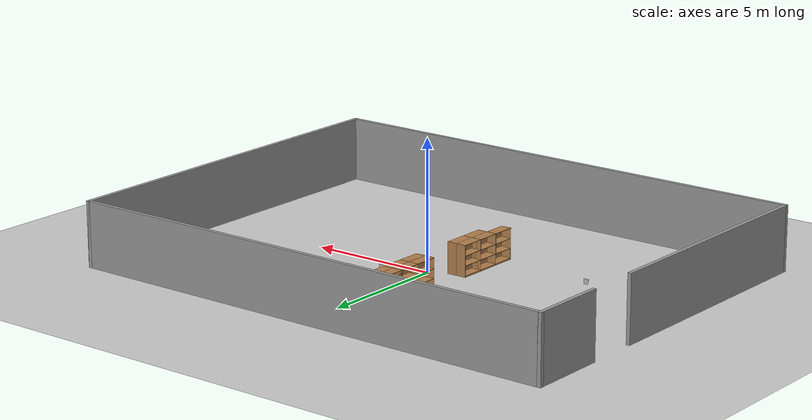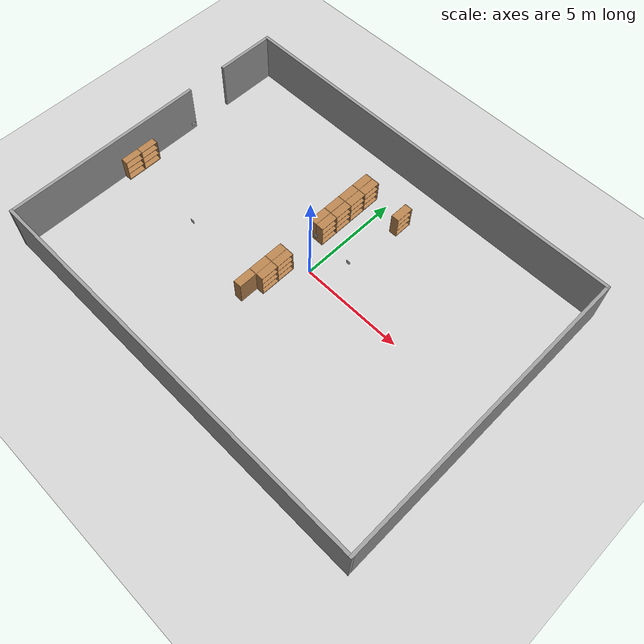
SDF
<sdf version="1.7">
 <world name="default">
  <model name="ground_plane">
   <static>1</static>
   <link name="link">
    <collision name="collision">
     <geometry><plane><normal>0 0 1</normal><size>100 100</size></plane></geometry>
     <surface><friction><ode><mu>100</mu><mu2>50</mu2></ode></friction></surface>
    </collision>
    <visual name="visual">
     <cast_shadows>0</cast_shadows>
     <geometry><plane><normal>0 0 1</normal><size>100 100</size></plane></geometry>
     <material>
      <script><uri>file://media/materials/scripts/gazebo.material</uri><name>Gazebo/Grey</name></script>
     </material>
    </visual>
   </link>
  </model>
  <model name="itu_walls">
   <pose>-0.001584 -0.50836 0 0 -0 0</pose>
   <link name="Wall_2">
    <collision name="Wall_2_Collision">
     <geometry><box><size>20 0.15 2.5</size></box></geometry>
     <pose>0 0 1.25 0 -0 0</pose>
    </collision>
    <visual name="Wall_2_Visual">
     <pose>0 0 1.25 0 -0 0</pose>
     <geometry><box><size>20 0.15 2.5</size></box></geometry>
     <material>
      <script><uri>file://media/materials/scripts/gazebo.material</uri><name>Gazebo/Grey</name></script>
      <ambient>1 1 1 1</ambient>
     </material>
     <meta><layer>0</layer></meta>
    </visual>
    <pose>0 7.425 0 0 -0 0</pose>
   </link>
   <link name="Wall_3">
    <collision name="Wall_3_Collision">
     <geometry><box><size>15 0.15 2.5</size></box></geometry>
     <pose>0 0 1.25 0 -0 0</pose>
    </collision>
    <visual name="Wall_3_Visual">
     <pose>0 0 1.25 0 -0 0</pose>
     <geometry><box><size>15 0.15 2.5</size></box></geometry>
     <material>
      <script><uri>file://media/materials/scripts/gazebo.material</uri><name>Gazebo/Grey</name></script>
      <ambient>1 1 1 1</ambient>
     </material>
     <meta><layer>0</layer></meta>
    </visual>
    <pose>9.925 0 0 0 -0 -1.5708</pose>
   </link>
   <link name="Wall_4">
    <collision name="Wall_4_Collision">
     <geometry><box><size>20 0.15 2.5</size></box></geometry>
     <pose>0 0 1.25 0 -0 0</pose>
    </collision>
    <visual name="Wall_4_Visual">
     <pose>0 0 1.25 0 -0 0</pose>
     <geometry><box><size>20 0.15 2.5</size></box></geometry>
     <material>
      <script><uri>file://media/materials/scripts/gazebo.material</uri><name>Gazebo/Grey</name></script>
      <ambient>1 1 1 1</ambient>
     </material>
     <meta><layer>0</layer></meta>
    </visual>
    <pose>0 -7.425 0 0 -0 3.14159</pose>
   </link>
   <link name="Wall_5">
    <collision name="Wall_5_Collision">
     <geometry><box><size>10 0.15 2.5</size></box></geometry>
     <pose>0 0 1.25 0 -0 0</pose>
    </collision>
    <visual name="Wall_5_Visual">
     <pose>0 0 1.25 0 -0 0</pose>
     <geometry><box><size>10 0.15 2.5</size></box></geometry>
     <material>
      <script><uri>file://media/materials/scripts/gazebo.material</uri><name>Gazebo/Grey</name></script>
      <ambient>1 1 1 1</ambient>
     </material>
     <meta><layer>0</layer></meta>
    </visual>
    <pose>-9.925 -2.5 0 0 -0 1.5708</pose>
   </link>
   <link name="Wall_7">
    <collision name="Wall_7_Collision">
     <geometry><box><size>3 0.15 2.5</size></box></geometry>
     <pose>0 0 1.25 0 -0 0</pose>
    </collision>
    <visual name="Wall_7_Visual">
     <pose>0 0 1.25 0 -0 0</pose>
     <geometry><box><size>3 0.15 2.5</size></box></geometry>
     <material>
      <script><uri>file://media/materials/scripts/gazebo.material</uri><name>Gazebo/Grey</name></script>
      <ambient>1 1 1 1</ambient>
     </material>
     <meta><layer>0</layer></meta>
    </visual>
    <pose>-9.925 6 0 0 -0 -1.5708</pose>
   </link>
   <static>1</static>
  </model>
  <model name="sec1_A_0">
   <static>1</static>
   <link name="link">
    <inertial><mass>1</mass></inertial>
    <visual name="visual1">
     <pose>0 0.005 0.6 0 -0 0</pose>
     <geometry><box><size>0.9 0.01 1.2</size></box></geometry>
     <material>
      <script><uri>file://media/materials/scripts/gazebo.material</uri><name>Gazebo/Wood</name></script>
     </material>
    </visual>
    <visual name="visual2">
     <pose>0.45 -0.195 0.6 0 -0 0</pose>
     <geometry><box><size>0.02 0.4 1.2</size></box></geometry>
     <material>
      <script><uri>file://media/materials/scripts/gazebo.material</uri><name>Gazebo/Wood</name></script>
     </material>
    </visual>
    <visual name="visual3">
     <pose>-0.45 -0.195 0.6 0 -0 0</pose>
     <geometry><box><size>0.02 0.4 1.2</size></box></geometry>
     <material>
      <script><uri>file://media/materials/scripts/gazebo.material</uri><name>Gazebo/Wood</name></script>
     </material>
    </visual>
    <visual name="visual4">
     <pose>0 -0.195 0.03 0 -0 0</pose>
     <geometry><box><size>0.88 0.4 0.06</size></box></geometry>
     <material>
      <script><uri>file://media/materials/scripts/gazebo.material</uri><name>Gazebo/Wood</name></script>
     </material>
    </visual>
    <visual name="visual5">
     <pose>0 -0.195 1.19 0 -0 0</pose>
     <geometry><box><size>0.88 0.4 0.02</size></box></geometry>
     <material>
      <script><uri>file://media/materials/scripts/gazebo.material</uri><name>Gazebo/Wood</name></script>
     </material>
    </visual>
    <visual name="visual6">
     <pose>0 -0.195 0.43 0 -0 0</pose>
     <geometry><box><size>0.88 0.4 0.02</size></box></geometry>
     <material>
      <script><uri>file://media/materials/scripts/gazebo.material</uri><name>Gazebo/Wood</name></script>
     </material>
    </visual>
    <visual name="visual7">
     <pose>0 -0.195 0.8 0 -0 0</pose>
     <geometry><box><size>0.88 0.4 0.02</size></box></geometry>
     <material>
      <script><uri>file://media/materials/scripts/gazebo.material</uri><name>Gazebo/Wood</name></script>
     </material>
    </visual>
    <collision name="unified_hitbox">
     <pose>0 -0.1925 0.6 0 -0 0</pose>
     <geometry><box><size>0.92 0.405 1.2</size></box></geometry>
    </collision>
   </link>
   <pose>1 4.55 0 0 -0 1.57</pose>
  </model>
  <model name="secNeg1_A_0">
   <static>1</static>
   <link name="link">
    <inertial><mass>1</mass></inertial>
    <visual name="visual1">
     <pose>0 0.005 0.6 0 -0 0</pose>
     <geometry><box><size>0.9 0.01 1.2</size></box></geometry>
     <material>
      <script><uri>file://media/materials/scripts/gazebo.material</uri><name>Gazebo/Wood</name></script>
     </material>
    </visual>
    <visual name="visual2">
     <pose>0.45 -0.195 0.6 0 -0 0</pose>
     <geometry><box><size>0.02 0.4 1.2</size></box></geometry>
     <material>
      <script><uri>file://media/materials/scripts/gazebo.material</uri><name>Gazebo/Wood</name></script>
     </material>
    </visual>
    <visual name="visual3">
     <pose>-0.45 -0.195 0.6 0 -0 0</pose>
     <geometry><box><size>0.02 0.4 1.2</size></box></geometry>
     <material>
      <script><uri>file://media/materials/scripts/gazebo.material</uri><name>Gazebo/Wood</name></script>
     </material>
    </visual>
    <visual name="visual4">
     <pose>0 -0.195 0.03 0 -0 0</pose>
     <geometry><box><size>0.88 0.4 0.06</size></box></geometry>
     <material>
      <script><uri>file://media/materials/scripts/gazebo.material</uri><name>Gazebo/Wood</name></script>
     </material>
    </visual>
    <visual name="visual5">
     <pose>0 -0.195 1.19 0 -0 0</pose>
     <geometry><box><size>0.88 0.4 0.02</size></box></geometry>
     <material>
      <script><uri>file://media/materials/scripts/gazebo.material</uri><name>Gazebo/Wood</name></script>
     </material>
    </visual>
    <visual name="visual6">
     <pose>0 -0.195 0.43 0 -0 0</pose>
     <geometry><box><size>0.88 0.4 0.02</size></box></geometry>
     <material>
      <script><uri>file://media/materials/scripts/gazebo.material</uri><name>Gazebo/Wood</name></script>
     </material>
    </visual>
    <visual name="visual7">
     <pose>0 -0.195 0.8 0 -0 0</pose>
     <geometry><box><size>0.88 0.4 0.02</size></box></geometry>
     <material>
      <script><uri>file://media/materials/scripts/gazebo.material</uri><name>Gazebo/Wood</name></script>
     </material>
    </visual>
    <collision name="unified_hitbox">
     <pose>0 -0.1925 0.6 0 -0 0</pose>
     <geometry><box><size>0.92 0.405 1.2</size></box></geometry>
    </collision>
   </link>
   <pose>-1 4.55 0 0 -0 1.57</pose>
  </model>
  <model name="secNeg1_A_1">
   <static>1</static>
   <link name="link">
    <inertial><mass>1</mass></inertial>
    <visual name="visual1">
     <pose>0 0.005 0.6 0 -0 0</pose>
     <geometry><box><size>0.9 0.01 1.2</size></box></geometry>
     <material>
      <script><uri>file://media/materials/scripts/gazebo.material</uri><name>Gazebo/Wood</name></script>
     </material>
    </visual>
    <visual name="visual2">
     <pose>0.45 -0.195 0.6 0 -0 0</pose>
     <geometry><box><size>0.02 0.4 1.2</size></box></geometry>
     <material>
      <script><uri>file://media/materials/scripts/gazebo.material</uri><name>Gazebo/Wood</name></script>
     </material>
    </visual>
    <visual name="visual3">
     <pose>-0.45 -0.195 0.6 0 -0 0</pose>
     <geometry><box><size>0.02 0.4 1.2</size></box></geometry>
     <material>
      <script><uri>file://media/materials/scripts/gazebo.material</uri><name>Gazebo/Wood</name></script>
     </material>
    </visual>
    <visual name="visual4">
     <pose>0 -0.195 0.03 0 -0 0</pose>
     <geometry><box><size>0.88 0.4 0.06</size></box></geometry>
     <material>
      <script><uri>file://media/materials/scripts/gazebo.material</uri><name>Gazebo/Wood</name></script>
     </material>
    </visual>
    <visual name="visual5">
     <pose>0 -0.195 1.19 0 -0 0</pose>
     <geometry><box><size>0.88 0.4 0.02</size></box></geometry>
     <material>
      <script><uri>file://media/materials/scripts/gazebo.material</uri><name>Gazebo/Wood</name></script>
     </material>
    </visual>
    <visual name="visual6">
     <pose>0 -0.195 0.43 0 -0 0</pose>
     <geometry><box><size>0.88 0.4 0.02</size></box></geometry>
     <material>
      <script><uri>file://media/materials/scripts/gazebo.material</uri><name>Gazebo/Wood</name></script>
     </material>
    </visual>
    <visual name="visual7">
     <pose>0 -0.195 0.8 0 -0 0</pose>
     <geometry><box><size>0.88 0.4 0.02</size></box></geometry>
     <material>
      <script><uri>file://media/materials/scripts/gazebo.material</uri><name>Gazebo/Wood</name></script>
     </material>
    </visual>
    <collision name="unified_hitbox">
     <pose>0 -0.1925 0.6 0 -0 0</pose>
     <geometry><box><size>0.92 0.405 1.2</size></box></geometry>
    </collision>
   </link>
   <pose>-1 3.65 0 0 -0 1.57</pose>
  </model>
  <model name="secNeg1_A_2">
   <static>1</static>
   <link name="link">
    <inertial><mass>1</mass></inertial>
    <visual name="visual1">
     <pose>0 0.005 0.6 0 -0 0</pose>
     <geometry><box><size>0.9 0.01 1.2</size></box></geometry>
     <material>
      <script><uri>file://media/materials/scripts/gazebo.material</uri><name>Gazebo/Wood</name></script>
     </material>
    </visual>
    <visual name="visual2">
     <pose>0.45 -0.195 0.6 0 -0 0</pose>
     <geometry><box><size>0.02 0.4 1.2</size></box></geometry>
     <material>
      <script><uri>file://media/materials/scripts/gazebo.material</uri><name>Gazebo/Wood</name></script>
     </material>
    </visual>
    <visual name="visual3">
     <pose>-0.45 -0.195 0.6 0 -0 0</pose>
     <geometry><box><size>0.02 0.4 1.2</size></box></geometry>
     <material>
      <script><uri>file://media/materials/scripts/gazebo.material</uri><name>Gazebo/Wood</name></script>
     </material>
    </visual>
    <visual name="visual4">
     <pose>0 -0.195 0.03 0 -0 0</pose>
     <geometry><box><size>0.88 0.4 0.06</size></box></geometry>
     <material>
      <script><uri>file://media/materials/scripts/gazebo.material</uri><name>Gazebo/Wood</name></script>
     </material>
    </visual>
    <visual name="visual5">
     <pose>0 -0.195 1.19 0 -0 0</pose>
     <geometry><box><size>0.88 0.4 0.02</size></box></geometry>
     <material>
      <script><uri>file://media/materials/scripts/gazebo.material</uri><name>Gazebo/Wood</name></script>
     </material>
    </visual>
    <visual name="visual6">
     <pose>0 -0.195 0.43 0 -0 0</pose>
     <geometry><box><size>0.88 0.4 0.02</size></box></geometry>
     <material>
      <script><uri>file://media/materials/scripts/gazebo.material</uri><name>Gazebo/Wood</name></script>
     </material>
    </visual>
    <visual name="visual7">
     <pose>0 -0.195 0.8 0 -0 0</pose>
     <geometry><box><size>0.88 0.4 0.02</size></box></geometry>
     <material>
      <script><uri>file://media/materials/scripts/gazebo.material</uri><name>Gazebo/Wood</name></script>
     </material>
    </visual>
    <collision name="unified_hitbox">
     <pose>0 -0.1925 0.6 0 -0 0</pose>
     <geometry><box><size>0.92 0.405 1.2</size></box></geometry>
    </collision>
   </link>
   <pose>-1 2.75 0 0 -0 1.57</pose>
  </model>
  <model name="secNeg1_B_0">
   <static>1</static>
   <link name="link">
    <inertial><mass>1</mass></inertial>
    <visual name="visual1">
     <pose>0 0.005 0.6 0 -0 0</pose>
     <geometry><box><size>0.9 0.01 1.2</size></box></geometry>
     <material>
      <script><uri>file://media/materials/scripts/gazebo.material</uri><name>Gazebo/Wood</name></script>
     </material>
    </visual>
    <visual name="visual2">
     <pose>0.45 -0.195 0.6 0 -0 0</pose>
     <geometry><box><size>0.02 0.4 1.2</size></box></geometry>
     <material>
      <script><uri>file://media/materials/scripts/gazebo.material</uri><name>Gazebo/Wood</name></script>
     </material>
    </visual>
    <visual name="visual3">
     <pose>-0.45 -0.195 0.6 0 -0 0</pose>
     <geometry><box><size>0.02 0.4 1.2</size></box></geometry>
     <material>
      <script><uri>file://media/materials/scripts/gazebo.material</uri><name>Gazebo/Wood</name></script>
     </material>
    </visual>
    <visual name="visual4">
     <pose>0 -0.195 0.03 0 -0 0</pose>
     <geometry><box><size>0.88 0.4 0.06</size></box></geometry>
     <material>
      <script><uri>file://media/materials/scripts/gazebo.material</uri><name>Gazebo/Wood</name></script>
     </material>
    </visual>
    <visual name="visual5">
     <pose>0 -0.195 1.19 0 -0 0</pose>
     <geometry><box><size>0.88 0.4 0.02</size></box></geometry>
     <material>
      <script><uri>file://media/materials/scripts/gazebo.material</uri><name>Gazebo/Wood</name></script>
     </material>
    </visual>
    <visual name="visual6">
     <pose>0 -0.195 0.43 0 -0 0</pose>
     <geometry><box><size>0.88 0.4 0.02</size></box></geometry>
     <material>
      <script><uri>file://media/materials/scripts/gazebo.material</uri><name>Gazebo/Wood</name></script>
     </material>
    </visual>
    <visual name="visual7">
     <pose>0 -0.195 0.8 0 -0 0</pose>
     <geometry><box><size>0.88 0.4 0.02</size></box></geometry>
     <material>
      <script><uri>file://media/materials/scripts/gazebo.material</uri><name>Gazebo/Wood</name></script>
     </material>
    </visual>
    <collision name="unified_hitbox">
     <pose>0 -0.1925 0.6 0 -0 0</pose>
     <geometry><box><size>0.92 0.405 1.2</size></box></geometry>
    </collision>
   </link>
   <pose>-1 4.55 0 0 0 -1.57</pose>
  </model>
  <model name="secNeg1_B_1">
   <static>1</static>
   <link name="link">
    <inertial><mass>1</mass></inertial>
    <visual name="visual1">
     <pose>0 0.005 0.6 0 -0 0</pose>
     <geometry><box><size>0.9 0.01 1.2</size></box></geometry>
     <material>
      <script><uri>file://media/materials/scripts/gazebo.material</uri><name>Gazebo/Wood</name></script>
     </material>
    </visual>
    <visual name="visual2">
     <pose>0.45 -0.195 0.6 0 -0 0</pose>
     <geometry><box><size>0.02 0.4 1.2</size></box></geometry>
     <material>
      <script><uri>file://media/materials/scripts/gazebo.material</uri><name>Gazebo/Wood</name></script>
     </material>
    </visual>
    <visual name="visual3">
     <pose>-0.45 -0.195 0.6 0 -0 0</pose>
     <geometry><box><size>0.02 0.4 1.2</size></box></geometry>
     <material>
      <script><uri>file://media/materials/scripts/gazebo.material</uri><name>Gazebo/Wood</name></script>
     </material>
    </visual>
    <visual name="visual4">
     <pose>0 -0.195 0.03 0 -0 0</pose>
     <geometry><box><size>0.88 0.4 0.06</size></box></geometry>
     <material>
      <script><uri>file://media/materials/scripts/gazebo.material</uri><name>Gazebo/Wood</name></script>
     </material>
    </visual>
    <visual name="visual5">
     <pose>0 -0.195 1.19 0 -0 0</pose>
     <geometry><box><size>0.88 0.4 0.02</size></box></geometry>
     <material>
      <script><uri>file://media/materials/scripts/gazebo.material</uri><name>Gazebo/Wood</name></script>
     </material>
    </visual>
    <visual name="visual6">
     <pose>0 -0.195 0.43 0 -0 0</pose>
     <geometry><box><size>0.88 0.4 0.02</size></box></geometry>
     <material>
      <script><uri>file://media/materials/scripts/gazebo.material</uri><name>Gazebo/Wood</name></script>
     </material>
    </visual>
    <visual name="visual7">
     <pose>0 -0.195 0.8 0 -0 0</pose>
     <geometry><box><size>0.88 0.4 0.02</size></box></geometry>
     <material>
      <script><uri>file://media/materials/scripts/gazebo.material</uri><name>Gazebo/Wood</name></script>
     </material>
    </visual>
    <collision name="unified_hitbox">
     <pose>0 -0.1925 0.6 0 -0 0</pose>
     <geometry><box><size>0.92 0.405 1.2</size></box></geometry>
    </collision>
   </link>
   <pose>-1 3.65 0 0 0 -1.57</pose>
  </model>
  <model name="secNeg1_B_2">
   <static>1</static>
   <link name="link">
    <inertial><mass>1</mass></inertial>
    <visual name="visual1">
     <pose>0 0.005 0.6 0 -0 0</pose>
     <geometry><box><size>0.9 0.01 1.2</size></box></geometry>
     <material>
      <script><uri>file://media/materials/scripts/gazebo.material</uri><name>Gazebo/Wood</name></script>
     </material>
    </visual>
    <visual name="visual2">
     <pose>0.45 -0.195 0.6 0 -0 0</pose>
     <geometry><box><size>0.02 0.4 1.2</size></box></geometry>
     <material>
      <script><uri>file://media/materials/scripts/gazebo.material</uri><name>Gazebo/Wood</name></script>
     </material>
    </visual>
    <visual name="visual3">
     <pose>-0.45 -0.195 0.6 0 -0 0</pose>
     <geometry><box><size>0.02 0.4 1.2</size></box></geometry>
     <material>
      <script><uri>file://media/materials/scripts/gazebo.material</uri><name>Gazebo/Wood</name></script>
     </material>
    </visual>
    <visual name="visual4">
     <pose>0 -0.195 0.03 0 -0 0</pose>
     <geometry><box><size>0.88 0.4 0.06</size></box></geometry>
     <material>
      <script><uri>file://media/materials/scripts/gazebo.material</uri><name>Gazebo/Wood</name></script>
     </material>
    </visual>
    <visual name="visual5">
     <pose>0 -0.195 1.19 0 -0 0</pose>
     <geometry><box><size>0.88 0.4 0.02</size></box></geometry>
     <material>
      <script><uri>file://media/materials/scripts/gazebo.material</uri><name>Gazebo/Wood</name></script>
     </material>
    </visual>
    <visual name="visual6">
     <pose>0 -0.195 0.43 0 -0 0</pose>
     <geometry><box><size>0.88 0.4 0.02</size></box></geometry>
     <material>
      <script><uri>file://media/materials/scripts/gazebo.material</uri><name>Gazebo/Wood</name></script>
     </material>
    </visual>
    <visual name="visual7">
     <pose>0 -0.195 0.8 0 -0 0</pose>
     <geometry><box><size>0.88 0.4 0.02</size></box></geometry>
     <material>
      <script><uri>file://media/materials/scripts/gazebo.material</uri><name>Gazebo/Wood</name></script>
     </material>
    </visual>
    <collision name="unified_hitbox">
     <pose>0 -0.1925 0.6 0 -0 0</pose>
     <geometry><box><size>0.92 0.405 1.2</size></box></geometry>
    </collision>
   </link>
   <pose>-1 2.75 0 0 0 -1.57</pose>
  </model>
  <model name="secNeg1_A_3">
   <static>1</static>
   <link name="link">
    <inertial><mass>1</mass></inertial>
    <visual name="visual1">
     <pose>0 0.005 0.6 0 -0 0</pose>
     <geometry><box><size>0.9 0.01 1.2</size></box></geometry>
     <material>
      <script><uri>file://media/materials/scripts/gazebo.material</uri><name>Gazebo/Wood</name></script>
     </material>
    </visual>
    <visual name="visual2">
     <pose>0.45 -0.195 0.6 0 -0 0</pose>
     <geometry><box><size>0.02 0.4 1.2</size></box></geometry>
     <material>
      <script><uri>file://media/materials/scripts/gazebo.material</uri><name>Gazebo/Wood</name></script>
     </material>
    </visual>
    <visual name="visual3">
     <pose>-0.45 -0.195 0.6 0 -0 0</pose>
     <geometry><box><size>0.02 0.4 1.2</size></box></geometry>
     <material>
      <script><uri>file://media/materials/scripts/gazebo.material</uri><name>Gazebo/Wood</name></script>
     </material>
    </visual>
    <visual name="visual4">
     <pose>0 -0.195 0.03 0 -0 0</pose>
     <geometry><box><size>0.88 0.4 0.06</size></box></geometry>
     <material>
      <script><uri>file://media/materials/scripts/gazebo.material</uri><name>Gazebo/Wood</name></script>
     </material>
    </visual>
    <visual name="visual5">
     <pose>0 -0.195 1.19 0 -0 0</pose>
     <geometry><box><size>0.88 0.4 0.02</size></box></geometry>
     <material>
      <script><uri>file://media/materials/scripts/gazebo.material</uri><name>Gazebo/Wood</name></script>
     </material>
    </visual>
    <visual name="visual6">
     <pose>0 -0.195 0.43 0 -0 0</pose>
     <geometry><box><size>0.88 0.4 0.02</size></box></geometry>
     <material>
      <script><uri>file://media/materials/scripts/gazebo.material</uri><name>Gazebo/Wood</name></script>
     </material>
    </visual>
    <visual name="visual7">
     <pose>0 -0.195 0.8 0 -0 0</pose>
     <geometry><box><size>0.88 0.4 0.02</size></box></geometry>
     <material>
      <script><uri>file://media/materials/scripts/gazebo.material</uri><name>Gazebo/Wood</name></script>
     </material>
    </visual>
    <collision name="unified_hitbox">
     <pose>0 -0.1925 0.6 0 -0 0</pose>
     <geometry><box><size>0.92 0.405 1.2</size></box></geometry>
    </collision>
   </link>
   <pose>-1 1.85 0 0 -0 1.57</pose>
  </model>
  <model name="secNeg1_B_3">
   <static>1</static>
   <link name="link">
    <inertial><mass>1</mass></inertial>
    <visual name="visual1">
     <pose>0 0.005 0.6 0 -0 0</pose>
     <geometry><box><size>0.9 0.01 1.2</size></box></geometry>
     <material>
      <script><uri>file://media/materials/scripts/gazebo.material</uri><name>Gazebo/Wood</name></script>
     </material>
    </visual>
    <visual name="visual2">
     <pose>0.45 -0.195 0.6 0 -0 0</pose>
     <geometry><box><size>0.02 0.4 1.2</size></box></geometry>
     <material>
      <script><uri>file://media/materials/scripts/gazebo.material</uri><name>Gazebo/Wood</name></script>
     </material>
    </visual>
    <visual name="visual3">
     <pose>-0.45 -0.195 0.6 0 -0 0</pose>
     <geometry><box><size>0.02 0.4 1.2</size></box></geometry>
     <material>
      <script><uri>file://media/materials/scripts/gazebo.material</uri><name>Gazebo/Wood</name></script>
     </material>
    </visual>
    <visual name="visual4">
     <pose>0 -0.195 0.03 0 -0 0</pose>
     <geometry><box><size>0.88 0.4 0.06</size></box></geometry>
     <material>
      <script><uri>file://media/materials/scripts/gazebo.material</uri><name>Gazebo/Wood</name></script>
     </material>
    </visual>
    <visual name="visual5">
     <pose>0 -0.195 1.19 0 -0 0</pose>
     <geometry><box><size>0.88 0.4 0.02</size></box></geometry>
     <material>
      <script><uri>file://media/materials/scripts/gazebo.material</uri><name>Gazebo/Wood</name></script>
     </material>
    </visual>
    <visual name="visual6">
     <pose>0 -0.195 0.43 0 -0 0</pose>
     <geometry><box><size>0.88 0.4 0.02</size></box></geometry>
     <material>
      <script><uri>file://media/materials/scripts/gazebo.material</uri><name>Gazebo/Wood</name></script>
     </material>
    </visual>
    <visual name="visual7">
     <pose>0 -0.195 0.8 0 -0 0</pose>
     <geometry><box><size>0.88 0.4 0.02</size></box></geometry>
     <material>
      <script><uri>file://media/materials/scripts/gazebo.material</uri><name>Gazebo/Wood</name></script>
     </material>
    </visual>
    <collision name="unified_hitbox">
     <pose>0 -0.1925 0.6 0 -0 0</pose>
     <geometry><box><size>0.92 0.405 1.2</size></box></geometry>
    </collision>
   </link>
   <pose>-1 1.85 0 0 0 -1.57</pose>
  </model>
  <model name="bot_secNeg1_A_0">
   <static>1</static>
   <link name="link">
    <inertial><mass>1</mass></inertial>
    <visual name="visual1">
     <pose>0 0.005 0.6 0 -0 0</pose>
     <geometry><box><size>0.9 0.01 1.2</size></box></geometry>
     <material>
      <script><uri>file://media/materials/scripts/gazebo.material</uri><name>Gazebo/Wood</name></script>
     </material>
    </visual>
    <visual name="visual2">
     <pose>0.45 -0.195 0.6 0 -0 0</pose>
     <geometry><box><size>0.02 0.4 1.2</size></box></geometry>
     <material>
      <script><uri>file://media/materials/scripts/gazebo.material</uri><name>Gazebo/Wood</name></script>
     </material>
    </visual>
    <visual name="visual3">
     <pose>-0.45 -0.195 0.6 0 -0 0</pose>
     <geometry><box><size>0.02 0.4 1.2</size></box></geometry>
     <material>
      <script><uri>file://media/materials/scripts/gazebo.material</uri><name>Gazebo/Wood</name></script>
     </material>
    </visual>
    <visual name="visual4">
     <pose>0 -0.195 0.03 0 -0 0</pose>
     <geometry><box><size>0.88 0.4 0.06</size></box></geometry>
     <material>
      <script><uri>file://media/materials/scripts/gazebo.material</uri><name>Gazebo/Wood</name></script>
     </material>
    </visual>
    <visual name="visual5">
     <pose>0 -0.195 1.19 0 -0 0</pose>
     <geometry><box><size>0.88 0.4 0.02</size></box></geometry>
     <material>
      <script><uri>file://media/materials/scripts/gazebo.material</uri><name>Gazebo/Wood</name></script>
     </material>
    </visual>
    <visual name="visual6">
     <pose>0 -0.195 0.43 0 -0 0</pose>
     <geometry><box><size>0.88 0.4 0.02</size></box></geometry>
     <material>
      <script><uri>file://media/materials/scripts/gazebo.material</uri><name>Gazebo/Wood</name></script>
     </material>
    </visual>
    <visual name="visual7">
     <pose>0 -0.195 0.8 0 -0 0</pose>
     <geometry><box><size>0.88 0.4 0.02</size></box></geometry>
     <material>
      <script><uri>file://media/materials/scripts/gazebo.material</uri><name>Gazebo/Wood</name></script>
     </material>
    </visual>
    <collision name="unified_hitbox">
     <pose>0 -0.1925 0.6 0 -0 0</pose>
     <geometry><box><size>0.92 0.405 1.2</size></box></geometry>
    </collision>
   </link>
   <pose>-1 -0.85 0 0 -0 1.57</pose>
  </model>
  <model name="bot_secNeg1_B_0">
   <static>1</static>
   <link name="link">
    <inertial><mass>1</mass></inertial>
    <visual name="visual1">
     <pose>0 0.005 0.6 0 -0 0</pose>
     <geometry><box><size>0.9 0.01 1.2</size></box></geometry>
     <material>
      <script><uri>file://media/materials/scripts/gazebo.material</uri><name>Gazebo/Wood</name></script>
     </material>
    </visual>
    <visual name="visual2">
     <pose>0.45 -0.195 0.6 0 -0 0</pose>
     <geometry><box><size>0.02 0.4 1.2</size></box></geometry>
     <material>
      <script><uri>file://media/materials/scripts/gazebo.material</uri><name>Gazebo/Wood</name></script>
     </material>
    </visual>
    <visual name="visual3">
     <pose>-0.45 -0.195 0.6 0 -0 0</pose>
     <geometry><box><size>0.02 0.4 1.2</size></box></geometry>
     <material>
      <script><uri>file://media/materials/scripts/gazebo.material</uri><name>Gazebo/Wood</name></script>
     </material>
    </visual>
    <visual name="visual4">
     <pose>0 -0.195 0.03 0 -0 0</pose>
     <geometry><box><size>0.88 0.4 0.06</size></box></geometry>
     <material>
      <script><uri>file://media/materials/scripts/gazebo.material</uri><name>Gazebo/Wood</name></script>
     </material>
    </visual>
    <visual name="visual5">
     <pose>0 -0.195 1.19 0 -0 0</pose>
     <geometry><box><size>0.88 0.4 0.02</size></box></geometry>
     <material>
      <script><uri>file://media/materials/scripts/gazebo.material</uri><name>Gazebo/Wood</name></script>
     </material>
    </visual>
    <visual name="visual6">
     <pose>0 -0.195 0.43 0 -0 0</pose>
     <geometry><box><size>0.88 0.4 0.02</size></box></geometry>
     <material>
      <script><uri>file://media/materials/scripts/gazebo.material</uri><name>Gazebo/Wood</name></script>
     </material>
    </visual>
    <visual name="visual7">
     <pose>0 -0.195 0.8 0 -0 0</pose>
     <geometry><box><size>0.88 0.4 0.02</size></box></geometry>
     <material>
      <script><uri>file://media/materials/scripts/gazebo.material</uri><name>Gazebo/Wood</name></script>
     </material>
    </visual>
    <collision name="unified_hitbox">
     <pose>0 -0.1925 0.6 0 -0 0</pose>
     <geometry><box><size>0.92 0.405 1.2</size></box></geometry>
    </collision>
   </link>
   <pose>-1 -0.85 0 0 0 -1.57</pose>
  </model>
  <model name="bot_secNeg1_A_1">
   <static>1</static>
   <link name="link">
    <inertial><mass>1</mass></inertial>
    <visual name="visual1">
     <pose>0 0.005 0.6 0 -0 0</pose>
     <geometry><box><size>0.9 0.01 1.2</size></box></geometry>
     <material>
      <script><uri>file://media/materials/scripts/gazebo.material</uri><name>Gazebo/Wood</name></script>
     </material>
    </visual>
    <visual name="visual2">
     <pose>0.45 -0.195 0.6 0 -0 0</pose>
     <geometry><box><size>0.02 0.4 1.2</size></box></geometry>
     <material>
      <script><uri>file://media/materials/scripts/gazebo.material</uri><name>Gazebo/Wood</name></script>
     </material>
    </visual>
    <visual name="visual3">
     <pose>-0.45 -0.195 0.6 0 -0 0</pose>
     <geometry><box><size>0.02 0.4 1.2</size></box></geometry>
     <material>
      <script><uri>file://media/materials/scripts/gazebo.material</uri><name>Gazebo/Wood</name></script>
     </material>
    </visual>
    <visual name="visual4">
     <pose>0 -0.195 0.03 0 -0 0</pose>
     <geometry><box><size>0.88 0.4 0.06</size></box></geometry>
     <material>
      <script><uri>file://media/materials/scripts/gazebo.material</uri><name>Gazebo/Wood</name></script>
     </material>
    </visual>
    <visual name="visual5">
     <pose>0 -0.195 1.19 0 -0 0</pose>
     <geometry><box><size>0.88 0.4 0.02</size></box></geometry>
     <material>
      <script><uri>file://media/materials/scripts/gazebo.material</uri><name>Gazebo/Wood</name></script>
     </material>
    </visual>
    <visual name="visual6">
     <pose>0 -0.195 0.43 0 -0 0</pose>
     <geometry><box><size>0.88 0.4 0.02</size></box></geometry>
     <material>
      <script><uri>file://media/materials/scripts/gazebo.material</uri><name>Gazebo/Wood</name></script>
     </material>
    </visual>
    <visual name="visual7">
     <pose>0 -0.195 0.8 0 -0 0</pose>
     <geometry><box><size>0.88 0.4 0.02</size></box></geometry>
     <material>
      <script><uri>file://media/materials/scripts/gazebo.material</uri><name>Gazebo/Wood</name></script>
     </material>
    </visual>
    <collision name="unified_hitbox">
     <pose>0 -0.1925 0.6 0 -0 0</pose>
     <geometry><box><size>0.92 0.405 1.2</size></box></geometry>
    </collision>
   </link>
   <pose>-1 -1.75 0 0 -0 1.57</pose>
  </model>
  <model name="bot_secNeg1_B_1">
   <static>1</static>
   <link name="link">
    <inertial><mass>1</mass></inertial>
    <visual name="visual1">
     <pose>0 0.005 0.6 0 -0 0</pose>
     <geometry><box><size>0.9 0.01 1.2</size></box></geometry>
     <material>
      <script><uri>file://media/materials/scripts/gazebo.material</uri><name>Gazebo/Wood</name></script>
     </material>
    </visual>
    <visual name="visual2">
     <pose>0.45 -0.195 0.6 0 -0 0</pose>
     <geometry><box><size>0.02 0.4 1.2</size></box></geometry>
     <material>
      <script><uri>file://media/materials/scripts/gazebo.material</uri><name>Gazebo/Wood</name></script>
     </material>
    </visual>
    <visual name="visual3">
     <pose>-0.45 -0.195 0.6 0 -0 0</pose>
     <geometry><box><size>0.02 0.4 1.2</size></box></geometry>
     <material>
      <script><uri>file://media/materials/scripts/gazebo.material</uri><name>Gazebo/Wood</name></script>
     </material>
    </visual>
    <visual name="visual4">
     <pose>0 -0.195 0.03 0 -0 0</pose>
     <geometry><box><size>0.88 0.4 0.06</size></box></geometry>
     <material>
      <script><uri>file://media/materials/scripts/gazebo.material</uri><name>Gazebo/Wood</name></script>
     </material>
    </visual>
    <visual name="visual5">
     <pose>0 -0.195 1.19 0 -0 0</pose>
     <geometry><box><size>0.88 0.4 0.02</size></box></geometry>
     <material>
      <script><uri>file://media/materials/scripts/gazebo.material</uri><name>Gazebo/Wood</name></script>
     </material>
    </visual>
    <visual name="visual6">
     <pose>0 -0.195 0.43 0 -0 0</pose>
     <geometry><box><size>0.88 0.4 0.02</size></box></geometry>
     <material>
      <script><uri>file://media/materials/scripts/gazebo.material</uri><name>Gazebo/Wood</name></script>
     </material>
    </visual>
    <visual name="visual7">
     <pose>0 -0.195 0.8 0 -0 0</pose>
     <geometry><box><size>0.88 0.4 0.02</size></box></geometry>
     <material>
      <script><uri>file://media/materials/scripts/gazebo.material</uri><name>Gazebo/Wood</name></script>
     </material>
    </visual>
    <collision name="unified_hitbox">
     <pose>0 -0.1925 0.6 0 -0 0</pose>
     <geometry><box><size>0.92 0.405 1.2</size></box></geometry>
    </collision>
   </link>
   <pose>-1 -1.75 0 0 0 -1.57</pose>
  </model>
  <model name="bot_secNeg1_B_2">
   <static>1</static>
   <link name="link">
    <inertial><mass>1</mass></inertial>
    <visual name="visual1">
     <pose>0 0.005 0.6 0 -0 0</pose>
     <geometry><box><size>0.9 0.01 1.2</size></box></geometry>
     <material>
      <script><uri>file://media/materials/scripts/gazebo.material</uri><name>Gazebo/Wood</name></script>
     </material>
    </visual>
    <visual name="visual2">
     <pose>0.45 -0.195 0.6 0 -0 0</pose>
     <geometry><box><size>0.02 0.4 1.2</size></box></geometry>
     <material>
      <script><uri>file://media/materials/scripts/gazebo.material</uri><name>Gazebo/Wood</name></script>
     </material>
    </visual>
    <visual name="visual3">
     <pose>-0.45 -0.195 0.6 0 -0 0</pose>
     <geometry><box><size>0.02 0.4 1.2</size></box></geometry>
     <material>
      <script><uri>file://media/materials/scripts/gazebo.material</uri><name>Gazebo/Wood</name></script>
     </material>
    </visual>
    <visual name="visual4">
     <pose>0 -0.195 0.03 0 -0 0</pose>
     <geometry><box><size>0.88 0.4 0.06</size></box></geometry>
     <material>
      <script><uri>file://media/materials/scripts/gazebo.material</uri><name>Gazebo/Wood</name></script>
     </material>
    </visual>
    <visual name="visual5">
     <pose>0 -0.195 1.19 0 -0 0</pose>
     <geometry><box><size>0.88 0.4 0.02</size></box></geometry>
     <material>
      <script><uri>file://media/materials/scripts/gazebo.material</uri><name>Gazebo/Wood</name></script>
     </material>
    </visual>
    <visual name="visual6">
     <pose>0 -0.195 0.43 0 -0 0</pose>
     <geometry><box><size>0.88 0.4 0.02</size></box></geometry>
     <material>
      <script><uri>file://media/materials/scripts/gazebo.material</uri><name>Gazebo/Wood</name></script>
     </material>
    </visual>
    <visual name="visual7">
     <pose>0 -0.195 0.8 0 -0 0</pose>
     <geometry><box><size>0.88 0.4 0.02</size></box></geometry>
     <material>
      <script><uri>file://media/materials/scripts/gazebo.material</uri><name>Gazebo/Wood</name></script>
     </material>
    </visual>
    <collision name="unified_hitbox">
     <pose>0 -0.1925 0.6 0 -0 0</pose>
     <geometry><box><size>0.92 0.405 1.2</size></box></geometry>
    </collision>
   </link>
   <pose>-1 -2.65 0 0 0 -1.57</pose>
  </model>
  <model name="archive_left_7">
   <static>1</static>
   <link name="link">
    <inertial><mass>1</mass></inertial>
    <collision name="back">
     <pose>0 0.005 0.6 0 -0 0</pose>
     <geometry><box><size>0.9 0.01 1.2</size></box></geometry>
    </collision>
    <visual name="visual1">
     <pose>0 0.005 0.6 0 -0 0</pose>
     <geometry><box><size>0.9 0.01 1.2</size></box></geometry>
     <material>
      <script><uri>file://media/materials/scripts/gazebo.material</uri><name>Gazebo/Wood</name></script>
     </material>
    </visual>
    <collision name="left_side">
     <pose>0.45 -0.195 0.6 0 -0 0</pose>
     <geometry><box><size>0.02 0.4 1.2</size></box></geometry>
    </collision>
    <visual name="visual2">
     <pose>0.45 -0.195 0.6 0 -0 0</pose>
     <geometry><box><size>0.02 0.4 1.2</size></box></geometry>
     <material>
      <script><uri>file://media/materials/scripts/gazebo.material</uri><name>Gazebo/Wood</name></script>
     </material>
    </visual>
    <collision name="right_side">
     <pose>-0.45 -0.195 0.6 0 -0 0</pose>
     <geometry><box><size>0.02 0.4 1.2</size></box></geometry>
    </collision>
    <visual name="visual3">
     <pose>-0.45 -0.195 0.6 0 -0 0</pose>
     <geometry><box><size>0.02 0.4 1.2</size></box></geometry>
     <material>
      <script><uri>file://media/materials/scripts/gazebo.material</uri><name>Gazebo/Wood</name></script>
     </material>
    </visual>
    <collision name="bottom">
     <pose>0 -0.195 0.03 0 -0 0</pose>
     <geometry><box><size>0.88 0.4 0.06</size></box></geometry>
    </collision>
    <visual name="visual4">
     <pose>0 -0.195 0.03 0 -0 0</pose>
     <geometry><box><size>0.88 0.4 0.06</size></box></geometry>
     <material>
      <script><uri>file://media/materials/scripts/gazebo.material</uri><name>Gazebo/Wood</name></script>
     </material>
    </visual>
    <collision name="top">
     <pose>0 -0.195 1.19 0 -0 0</pose>
     <geometry><box><size>0.88 0.4 0.02</size></box></geometry>
    </collision>
    <visual name="visual5">
     <pose>0 -0.195 1.19 0 -0 0</pose>
     <geometry><box><size>0.88 0.4 0.02</size></box></geometry>
     <material>
      <script><uri>file://media/materials/scripts/gazebo.material</uri><name>Gazebo/Wood</name></script>
     </material>
    </visual>
    <collision name="low_shelf">
     <pose>0 -0.195 0.43 0 -0 0</pose>
     <geometry><box><size>0.88 0.4 0.02</size></box></geometry>
    </collision>
    <visual name="visual6">
     <pose>0 -0.195 0.43 0 -0 0</pose>
     <geometry><box><size>0.88 0.4 0.02</size></box></geometry>
     <material>
      <script><uri>file://media/materials/scripts/gazebo.material</uri><name>Gazebo/Wood</name></script>
     </material>
    </visual>
    <collision name="high_shelf">
     <pose>0 -0.195 0.8 0 -0 0</pose>
     <geometry><box><size>0.88 0.4 0.02</size></box></geometry>
    </collision>
    <visual name="visual7">
     <pose>0 -0.195 0.8 0 -0 0</pose>
     <geometry><box><size>0.88 0.4 0.02</size></box></geometry>
     <material>
      <script><uri>file://media/materials/scripts/gazebo.material</uri><name>Gazebo/Wood</name></script>
     </material>
    </visual>
   </link>
   <pose>-9.9 -1.95 0 0 -0 1.57</pose>
  </model>
  <model name="archive_left_8">
   <static>1</static>
   <link name="link">
    <inertial><mass>1</mass></inertial>
    <collision name="back">
     <pose>0 0.005 0.6 0 -0 0</pose>
     <geometry><box><size>0.9 0.01 1.2</size></box></geometry>
    </collision>
    <visual name="visual1">
     <pose>0 0.005 0.6 0 -0 0</pose>
     <geometry><box><size>0.9 0.01 1.2</size></box></geometry>
     <material>
      <script><uri>file://media/materials/scripts/gazebo.material</uri><name>Gazebo/Wood</name></script>
     </material>
    </visual>
    <collision name="left_side">
     <pose>0.45 -0.195 0.6 0 -0 0</pose>
     <geometry><box><size>0.02 0.4 1.2</size></box></geometry>
    </collision>
    <visual name="visual2">
     <pose>0.45 -0.195 0.6 0 -0 0</pose>
     <geometry><box><size>0.02 0.4 1.2</size></box></geometry>
     <material>
      <script><uri>file://media/materials/scripts/gazebo.material</uri><name>Gazebo/Wood</name></script>
     </material>
    </visual>
    <collision name="right_side">
     <pose>-0.45 -0.195 0.6 0 -0 0</pose>
     <geometry><box><size>0.02 0.4 1.2</size></box></geometry>
    </collision>
    <visual name="visual3">
     <pose>-0.45 -0.195 0.6 0 -0 0</pose>
     <geometry><box><size>0.02 0.4 1.2</size></box></geometry>
     <material>
      <script><uri>file://media/materials/scripts/gazebo.material</uri><name>Gazebo/Wood</name></script>
     </material>
    </visual>
    <collision name="bottom">
     <pose>0 -0.195 0.03 0 -0 0</pose>
     <geometry><box><size>0.88 0.4 0.06</size></box></geometry>
    </collision>
    <visual name="visual4">
     <pose>0 -0.195 0.03 0 -0 0</pose>
     <geometry><box><size>0.88 0.4 0.06</size></box></geometry>
     <material>
      <script><uri>file://media/materials/scripts/gazebo.material</uri><name>Gazebo/Wood</name></script>
     </material>
    </visual>
    <collision name="top">
     <pose>0 -0.195 1.19 0 -0 0</pose>
     <geometry><box><size>0.88 0.4 0.02</size></box></geometry>
    </collision>
    <visual name="visual5">
     <pose>0 -0.195 1.19 0 -0 0</pose>
     <geometry><box><size>0.88 0.4 0.02</size></box></geometry>
     <material>
      <script><uri>file://media/materials/scripts/gazebo.material</uri><name>Gazebo/Wood</name></script>
     </material>
    </visual>
    <collision name="low_shelf">
     <pose>0 -0.195 0.43 0 -0 0</pose>
     <geometry><box><size>0.88 0.4 0.02</size></box></geometry>
    </collision>
    <visual name="visual6">
     <pose>0 -0.195 0.43 0 -0 0</pose>
     <geometry><box><size>0.88 0.4 0.02</size></box></geometry>
     <material>
      <script><uri>file://media/materials/scripts/gazebo.material</uri><name>Gazebo/Wood</name></script>
     </material>
    </visual>
    <collision name="high_shelf">
     <pose>0 -0.195 0.8 0 -0 0</pose>
     <geometry><box><size>0.88 0.4 0.02</size></box></geometry>
    </collision>
    <visual name="visual7">
     <pose>0 -0.195 0.8 0 -0 0</pose>
     <geometry><box><size>0.88 0.4 0.02</size></box></geometry>
     <material>
      <script><uri>file://media/materials/scripts/gazebo.material</uri><name>Gazebo/Wood</name></script>
     </material>
    </visual>
   </link>
   <pose>-9.9 -1.05 0 0 -0 1.57</pose>
  </model>
  <model name="aruco_marker_0">
   <static>1</static>
   <link name="link">
    <collision name="collision"><geometry><box><size>0.2 0.2 0.01</size></box></geometry></collision>
    <visual name="visual">
     <geometry><box><size>0.2 0.2 0.01</size></box></geometry>
     <material>
      <script>
       <uri>model://aruco_marker_0/materials/scripts</uri>
       <uri>model://aruco_marker_0/materials/textures</uri>
       <name>Aruco/Marker0</name>
      </script>
     </material>
    </visual>
   </link>
   <pose>-0.999596 1.38507 0.368462 1.56867 -0 0</pose>
  </model>
  <model name="aruco_marker_1">
   <static>1</static>
   <link name="link">
    <collision name="collision"><geometry><box><size>0.2 0.2 0.01</size></box></geometry></collision>
    <visual name="visual">
     <geometry><box><size>0.2 0.2 0.01</size></box></geometry>
     <material>
      <script>
       <uri>model://aruco_marker_1/materials/scripts</uri>
       <uri>model://aruco_marker_1/materials/textures</uri>
       <name>Aruco/Marker1</name>
      </script>
     </material>
    </visual>
   </link>
   <pose>0.989355 1.38205 0.378306 1.56762 -0 0</pose>
  </model>
  <model name="aruco_marker_7">
   <static>1</static>
   <link name="link">
    <collision name="collision"><geometry><box><size>0.2 0.2 0.01</size></box></geometry></collision>
    <visual name="visual">
     <geometry><box><size>0.2 0.2 0.01</size></box></geometry>
     <material>
      <script>
       <uri>model://aruco_marker_7/materials/scripts</uri>
       <uri>model://aruco_marker_7/materials/textures</uri>
       <name>Aruco/Marker7</name>
      </script>
     </material>
    </visual>
   </link>
   <pose>-5.49858 -1.98369 0.275335 1.57226 1e-06 3.14106</pose>
  </model>
  <model name="aruco_marker_8">
   <static>1</static>
   <link name="link">
    <collision name="collision"><geometry><box><size>0.2 0.2 0.01</size></box></geometry></collision>
    <visual name="visual">
     <geometry><box><size>0.2 0.2 0.01</size></box></geometry>
     <material>
      <script>
       <uri>model://aruco_marker_8/materials/scripts</uri>
       <uri>model://aruco_marker_8/materials/textures</uri>
       <name>Aruco/Marker8</name>
      </script>
     </material>
    </visual>
   </link>
   <pose>-9.84303 1.81614 0.336529 1.5708 0.003008 1.57172</pose>
  </model>
 </world>
</sdf>
